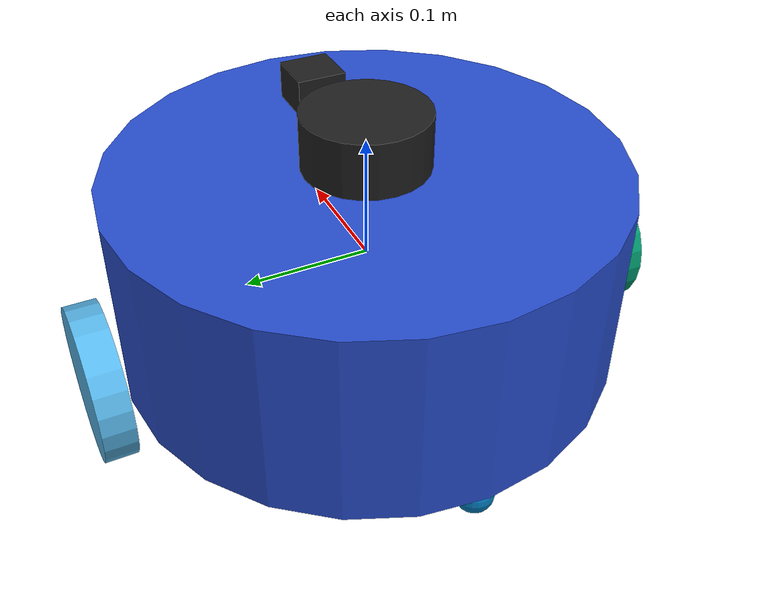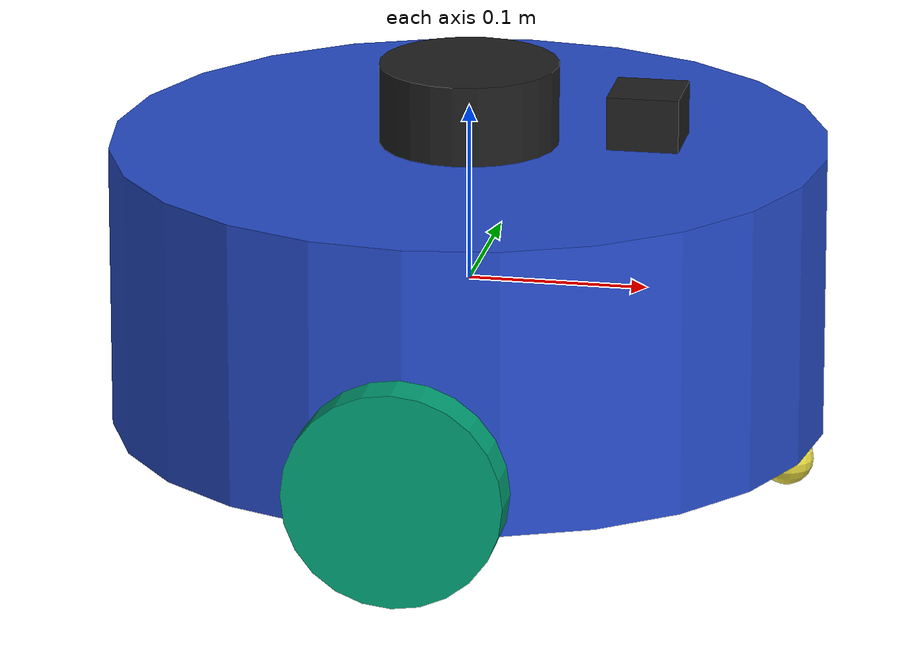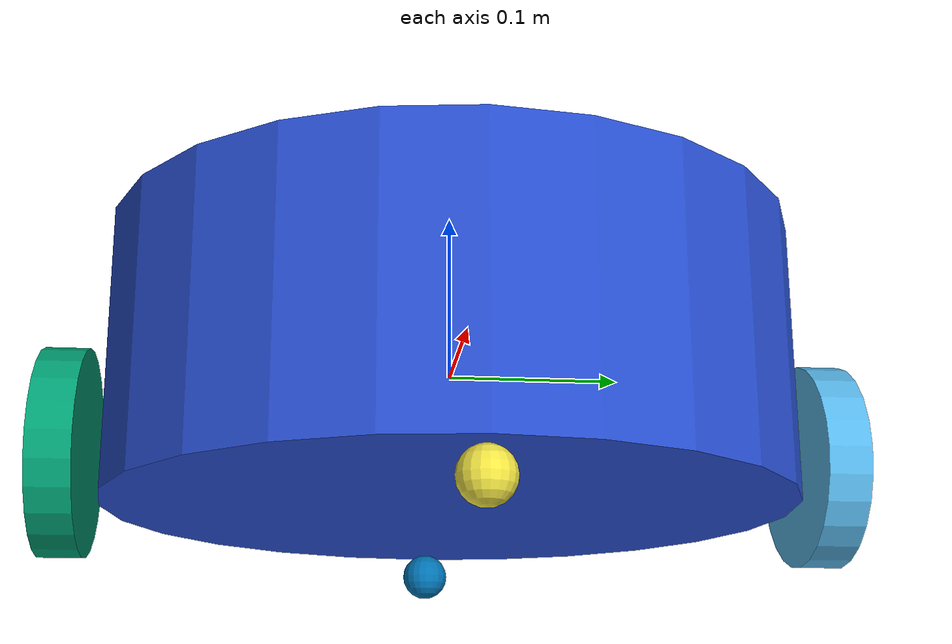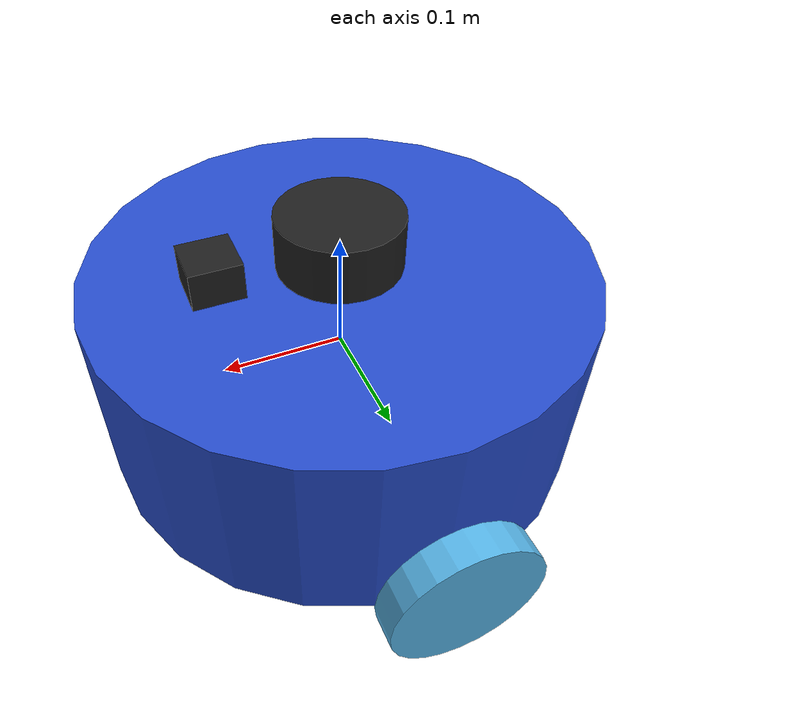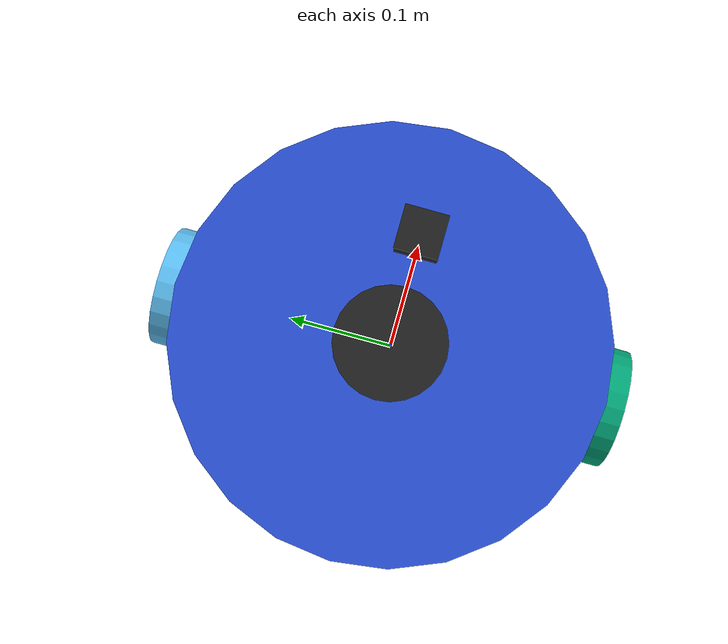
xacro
<?xml version="1.0" ?>
<robot xmlns:xacro="http://www.ros.org/wiki/xacro"
    xmlns:sensor="http://playerstage.sourceforge.net/gazebo/xmlschema/#sensor"
        xmlns:controller="http://playerstage.sourceforge.net/gazebo/xmlschema/#controller"
        xmlns:interface="http://playerstage.sourceforge.net/gazebo/xmlschema/#interface"
    name="robot1">
    <xacro:include filename="$(find mbot_description)/urdf/sensors/imu.xacro"/>
    <xacro:include filename="$(find mbot_description)/urdf/sensors/lidar.xacro"/>
    <xacro:macro name="default_inertial" params="mass">
               <inertial>
                       <mass value="${mass}" />
                       <inertia ixx="1.0" ixy="0.0" ixz="0.0"
                                iyy="1.0" iyz="0.0"
                                izz="1.0" />
               </inertial>
    </xacro:macro>

    <link name="base_link">
        <visual>
            <origin xyz=" 0 0 0" rpy="0 0 0" />
            <geometry>
                <cylinder length="0.16" radius="0.20"/>
            </geometry>
        </visual>
        <collision>
            <origin xyz="0 0 0" rpy="0 0 0" />
            <geometry>
                <cylinder length="0.16" radius="0.20"/>
            </geometry>
        </collision>
	 <xacro:default_inertial mass="25.0"/>
    </link>

    <gazebo reference="base_link">
    	<material>Gazebo/Blue</material>
	<turnGravityOff>false</turnGravityOff>
    </gazebo>

    <xacro:macro name="side_wheel" params="LR sym1">
        <joint name="${LR}_wheel_joint" type="continuous">
            <origin xyz="0 ${sym1} -0.05" rpy="0 0 0"/>
            <parent link="base_link"/>
            <child link="${LR}_wheel_link"/>
            <axis xyz="0 1 0"/>
        </joint>

        <link name="${LR}_wheel_link">
            <visual>
                <origin xyz="0 0 0" rpy="1.5707 0 0" />
                <geometry>
                    <cylinder radius="0.06" length = "0.025"/>
                </geometry>
            </visual>
            <collision>
            <origin xyz="0 0 0" rpy="1.5707 0 0" />
            <geometry>
                    <cylinder length="0.025" radius="0.06"/>
            </geometry>
            </collision>
            <xacro:default_inertial mass="10"/>
        </link>

    </xacro:macro>

    <xacro:macro name="auxiliary_wheel" params="LR sym1">
        <joint name="${LR}_caster_joint" type="continuous">
            <origin xyz="${sym1} 0 -0.095" rpy="0 0 0"/>
            <parent link="base_link"/>
            <child link="${LR}_caster_link"/>
            <axis xyz="0 1 0"/>
        </joint>

        <link name="${LR}_caster_link">
            <visual>
                <origin xyz="0 0 0" rpy="0 0 0"/>
                <geometry>
                    <sphere radius="0.015" />
                </geometry>
            </visual>
            <collision>
            <origin xyz="0 0 0" rpy="0 0 0"/>
            <geometry>
                    <sphere radius="0.015"/>
            </geometry>
            </collision>
            <xacro:default_inertial mass="0.5"/>
        </link>

    </xacro:macro>

<xacro:side_wheel LR="left" sym1="0.22" />
<xacro:side_wheel LR="right" sym1="-0.22" />
<xacro:auxiliary_wheel LR="front" sym1="0.18" />
<xacro:auxiliary_wheel LR="back" sym1="-0.18" />

<!--yun tai-->

<!--camera-->

<!--lidar-->
<joint name="lidar_joint" type="fixed">
    <origin xyz="0 0 0.1" rpy="0 0 0"/>
    <parent link="base_link"/>
    <child link="lidar_link"/>
</joint>
<xacro:lidar prefix="lidar"/>

<!--imu-->
<joint name="imu_joint" type="fixed">
    <origin xyz="0.1 0 0.1" rpy="0 0 0"/>
    <parent link="base_link"/>
    <child link="imu_link"/>
</joint>
<xacro:imu prefix="imu"/>

<!-- Ros_Control-->
<xacro:macro name="joint_control" params="TN JN AN">
    <transmission name="${TN}">
        <type>transmission_interface/SimpleTransmission</type>
        <joint name="${JN}">
            <hardwareInterface>EffortJointInterface</hardwareInterface>
        </joint>
        <actuator name="${AN}">
            <hardwareInterface>EffortJointInterface</hardwareInterface>
            <mechanicalReduction>1</mechanicalReduction>
        </actuator>
    </transmission>
</xacro:macro>

<xacro:joint_control TN="trans_left" JN="left_wheel_joint" AN="motor_left" />
<xacro:joint_control TN="trans_right" JN="right_wheel_joint" AN="motor_right" />
<xacro:joint_control TN="trans_yun" JN="yun_joint" AN="motor_yun" />

<!-- controller -->
<gazebo>
    <plugin name="differential_drive_controller" filename="libgazebo_ros_diff_drive.so">
        <rosDebugLevel>Debug</rosDebugLevel>
        <publishWheelTF>true</publishWheelTF>
        <robotNamespace>/</robotNamespace>
        <publishTf>1</publishTf>
        <publishWheelJointState>true</publishWheelJointState>
        <alwaysOn>true</alwaysOn>
        <updateRate>100.0</updateRate>
        <legacyMode>true</legacyMode>
        <leftJoint>left_wheel_joint</leftJoint>
        <rightJoint>right_wheel_joint</rightJoint>
        <wheelSeparation>0.44</wheelSeparation>
        <wheelDiameter>0.12</wheelDiameter>
        <broadcastTF>1</broadcastTF>
        <wheelTorque>30</wheelTorque>
        <wheelAcceleration>1.8</wheelAcceleration>
        <commandTopic>cmd_vel</commandTopic>
        <odometryFrame>odom</odometryFrame>
        <odometryTopic>odom</odometryTopic>
        <robotBaseFrame>base_link</robotBaseFrame>
    </plugin>
</gazebo>

<gazebo>
    <plugin name="gazebo_ros_control" filename="libgazebo_ros_control.so">
        <robotNamespace>/robot</robotNamespace>
        <controlPeriod>0.01</controlPeriod>
        <robotSimType>gazebo_ros_control/DefaultRobotHWSim</robotSimType>
    </plugin>
</gazebo>

</robot>

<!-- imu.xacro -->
<robot xmlns:xacro="http://www.ros.org/wiki/xacro" name="imu">

    <xacro:macro name="imu" params="prefix:=imu">
        <!-- Create laser reference frame -->
        <link name="${prefix}_link">
            <inertial>
                <mass value="0.001" />
                <origin xyz="0 0 0" />
                <inertia ixx="0.001" ixy="0.0" ixz="0.0"
                         iyy="0.001" iyz="0.0"
                         izz="0.001" />
            </inertial>

            <visual>
                <origin xyz=" 0 0 0 " rpy="0 0 0" />
                <geometry>
                    <box size="0.04 0.04 0.03" />
                </geometry>
                <material name="black"/>
            </visual>

            <collision>
                <origin xyz="0.0 0.0 0.0" rpy="0 0 0" />
                <geometry>
                    <box size="0.04 0.04 0.03" />
                </geometry>
            </collision>
        </link>
        <gazebo reference="${prefix}_link">
            <material>Gazebo/Black</material>
        </gazebo>

        <gazebo reference="${prefix}_link">
            <gravity>true</gravity>
            <sensor name="imu_sensor" type="imu">
                <always_on>true</always_on>
                <update_rate>10</update_rate>
                <visualize>true</visualize>
                <topic>/imu_data</topic>
                <plugin filename="libgazebo_ros_imu_sensor.so" name="imu_plugin">
                    <topicName>/imu_data</topicName>
                    <bodyName>imu_link</bodyName>
                    <updateRateHZ>10.0</updateRateHZ>
                    <gaussianNoise>0.0</gaussianNoise>
                    <xyzOffset>0 0 0</xyzOffset>
                    <rpyOffset>0 0 0</rpyOffset>
                    <frameName>imu_link</frameName>
                </plugin>
                <pose>0 0 0 0 0 0</pose>
            </sensor>
        </gazebo>

    </xacro:macro>
</robot>

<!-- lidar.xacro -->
<robot xmlns:xacro="http://www.ros.org/wiki/xacro" name="lidar">

    <xacro:macro name="lidar" params="prefix:=laser">
        <!-- Create laser reference frame -->
        <link name="${prefix}_link">
            <inertial>
                <mass value="0.001" />
                <origin xyz="0 0 0" />
                <inertia ixx="0.001" ixy="0.0" ixz="0.0"
                         iyy="0.001" iyz="0.0"
                         izz="0.001" />
            </inertial>

            <visual>
                <origin xyz=" 0 0 0 " rpy="0 0 0" />
                <geometry>
                    <cylinder length="0.05" radius="0.05"/>
                </geometry>
                <material name="black"/>
            </visual>

            <collision>
                <origin xyz="0.0 0.0 0.0" rpy="0 0 0" />
                <geometry>
                    <cylinder length="0.06" radius="0.05"/>
                </geometry>
            </collision>
        </link>
        <gazebo reference="${prefix}_link">
            <material>Gazebo/Black</material>
        </gazebo>

        <gazebo reference="${prefix}_link">
            <sensor type="ray" name="ls01g">
                <pose>0 0 0 0 0 0</pose>
                <visualize>false</visualize>
                <update_rate>7.0</update_rate>
                <ray>
                    <scan>
                        <horizontal>
                            <samples>360</samples>
                            <resolution>1</resolution>
                            <min_angle>-3.1415926</min_angle>
                            <max_angle>3.1415926</max_angle>
                        </horizontal>
                    </scan>
                    <range>
                        <min>0.10</min>
                        <max>8.0</max>
                        <resolution>0.01</resolution>
                    </range>
                    <noise>
                        <type>gaussian</type>
                        <mean>0.0</mean>
                        <stddev>0.02</stddev>
                    </noise>
                </ray>
                <plugin name="gazebo_ls01g" filename="libgazebo_ros_laser.so">
                    <topicName>/scan</topicName>
                    <frameName>lidar_link</frameName>
                </plugin>
            </sensor>
        </gazebo>

    </xacro:macro>
</robot>
